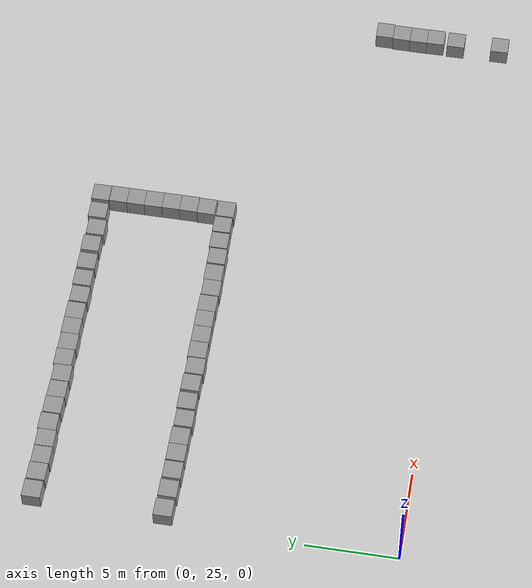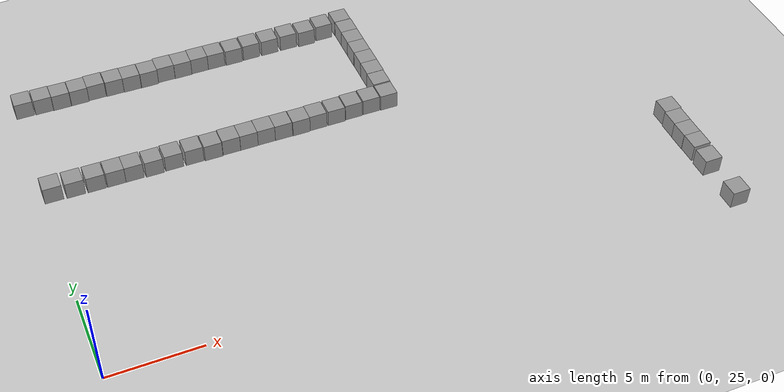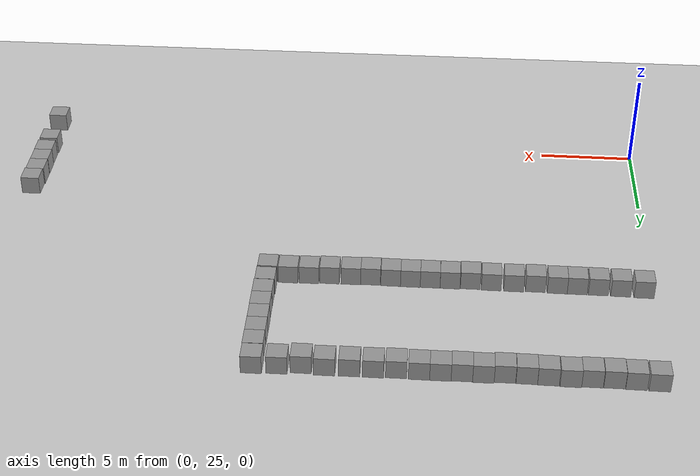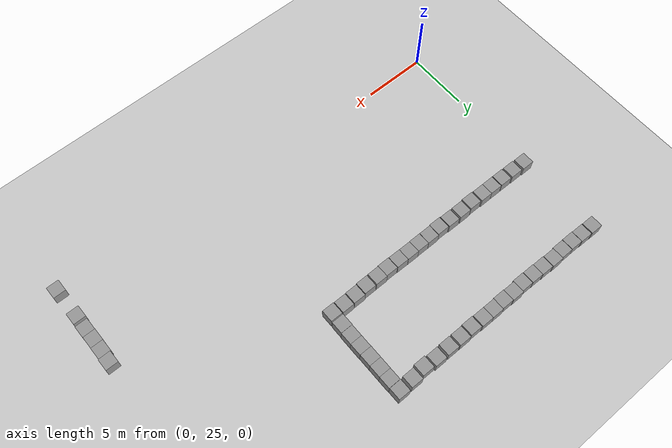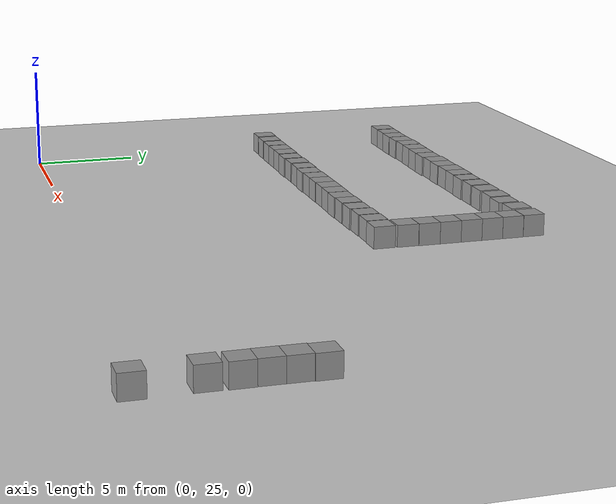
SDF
<sdf version="1.4">
 <world name="default">
  <model name="ground_plane">
   <static>1</static>
   <link name="link">
    <collision name="collision">
     <geometry><plane><normal>0 0 1</normal><size>100 100</size></plane></geometry>
     <surface><friction><ode><mu>100</mu><mu2>50</mu2></ode></friction></surface>
    </collision>
    <visual name="visual">
     <cast_shadows>0</cast_shadows>
     <geometry><plane><normal>0 0 1</normal><size>100 100</size></plane></geometry>
     <material>
      <script><uri>file://media/materials/scripts/gazebo.material</uri><name>Gazebo/Grey</name></script>
     </material>
    </visual>
    <velocity_decay><linear>0</linear><angular>0</angular></velocity_decay>
   </link>
  </model>
  <model name="unit_box_1">
   <pose>15.2627 37.4478 0.5 0 0 -0.00037</pose>
   <link name="link">
    <inertial>
     <mass>1</mass>
     <inertia><ixx>1</ixx><ixy>0</ixy><ixz>0</ixz><iyy>1</iyy><iyz>0</iyz><izz>1</izz></inertia>
    </inertial>
    <collision name="collision"><geometry><box><size>1 1 1</size></box></geometry></collision>
    <visual name="visual">
     <geometry><box><size>1 1 1</size></box></geometry>
     <material>
      <script><uri>file://media/materials/scripts/gazebo.material</uri><name>Gazebo/Grey</name></script>
     </material>
    </visual>
    <velocity_decay><linear>0</linear><angular>0</angular></velocity_decay>
   </link>
   <static>0</static>
  </model>
  <model name="unit_box_3">
   <pose>19.5401 41.5958 0.5 0 -0 0.000629</pose>
   <link name="link">
    <inertial>
     <mass>1</mass>
     <inertia><ixx>1</ixx><ixy>0</ixy><ixz>0</ixz><iyy>1</iyy><iyz>0</iyz><izz>1</izz></inertia>
    </inertial>
    <collision name="collision"><geometry><box><size>1 1 1</size></box></geometry></collision>
    <visual name="visual">
     <geometry><box><size>1 1 1</size></box></geometry>
     <material>
      <script><uri>file://media/materials/scripts/gazebo.material</uri><name>Gazebo/Grey</name></script>
     </material>
    </visual>
    <velocity_decay><linear>0</linear><angular>0</angular></velocity_decay>
   </link>
   <static>0</static>
  </model>
  <model name="unit_box_4">
   <pose>19.5489 40.5957 0.5 -3.14159 -0 -3.141</pose>
   <link name="link">
    <inertial>
     <mass>1</mass>
     <inertia><ixx>1</ixx><ixy>0</ixy><ixz>0</ixz><iyy>1</iyy><iyz>0</iyz><izz>1</izz></inertia>
    </inertial>
    <collision name="collision"><geometry><box><size>1 1 1</size></box></geometry></collision>
    <visual name="visual">
     <geometry><box><size>1 1 1</size></box></geometry>
     <material>
      <script><uri>file://media/materials/scripts/gazebo.material</uri><name>Gazebo/Grey</name></script>
     </material>
    </visual>
    <velocity_decay><linear>0</linear><angular>0</angular></velocity_decay>
   </link>
   <static>0</static>
  </model>
  <model name="unit_box_5">
   <pose>19.5412 42.5958 0.5 0 -0 0.000513</pose>
   <link name="link">
    <inertial>
     <mass>1</mass>
     <inertia><ixx>1</ixx><ixy>0</ixy><ixz>0</ixz><iyy>1</iyy><iyz>0</iyz><izz>1</izz></inertia>
    </inertial>
    <collision name="collision"><geometry><box><size>1 1 1</size></box></geometry></collision>
    <visual name="visual">
     <geometry><box><size>1 1 1</size></box></geometry>
     <material>
      <script><uri>file://media/materials/scripts/gazebo.material</uri><name>Gazebo/Grey</name></script>
     </material>
    </visual>
    <velocity_decay><linear>0</linear><angular>0</angular></velocity_decay>
   </link>
   <static>0</static>
  </model>
  <model name="unit_box_6">
   <pose>8.15665 37.4382 0.5 0 -0 0</pose>
   <link name="link">
    <inertial>
     <mass>1</mass>
     <inertia><ixx>1</ixx><ixy>0</ixy><ixz>0</ixz><iyy>1</iyy><iyz>0</iyz><izz>1</izz></inertia>
    </inertial>
    <collision name="collision"><geometry><box><size>1 1 1</size></box></geometry></collision>
    <visual name="visual">
     <geometry><box><size>1 1 1</size></box></geometry>
     <material>
      <script><uri>file://media/materials/scripts/gazebo.material</uri><name>Gazebo/Grey</name></script>
     </material>
    </visual>
    <velocity_decay><linear>0</linear><angular>0</angular></velocity_decay>
   </link>
   <static>0</static>
  </model>
  <model name="unit_box_7">
   <pose>17.3937 37.5116 0.5 0 -0 -0.000796</pose>
   <link name="link">
    <inertial>
     <mass>1</mass>
     <inertia><ixx>1</ixx><ixy>0</ixy><ixz>0</ixz><iyy>1</iyy><iyz>0</iyz><izz>1</izz></inertia>
    </inertial>
    <collision name="collision"><geometry><box><size>1 1 1</size></box></geometry></collision>
    <visual name="visual">
     <geometry><box><size>1 1 1</size></box></geometry>
     <material>
      <script><uri>file://media/materials/scripts/gazebo.material</uri><name>Gazebo/Grey</name></script>
     </material>
    </visual>
    <velocity_decay><linear>0</linear><angular>0</angular></velocity_decay>
   </link>
   <static>0</static>
  </model>
  <model name="unit_box_8">
   <pose>7.02469 37.4425 0.5 0 -0 4.7e-05</pose>
   <link name="link">
    <inertial>
     <mass>1</mass>
     <inertia><ixx>1</ixx><ixy>0</ixy><ixz>0</ixz><iyy>1</iyy><iyz>0</iyz><izz>1</izz></inertia>
    </inertial>
    <collision name="collision"><geometry><box><size>1 1 1</size></box></geometry></collision>
    <visual name="visual">
     <geometry><box><size>1 1 1</size></box></geometry>
     <material>
      <script><uri>file://media/materials/scripts/gazebo.material</uri><name>Gazebo/Grey</name></script>
     </material>
    </visual>
    <velocity_decay><linear>0</linear><angular>0</angular></velocity_decay>
   </link>
   <static>0</static>
  </model>
  <model name="unit_box_9">
   <pose>16.3457 37.4558 0.5 0 0 -0.000796</pose>
   <link name="link">
    <inertial>
     <mass>1</mass>
     <inertia><ixx>1</ixx><ixy>0</ixy><ixz>0</ixz><iyy>1</iyy><iyz>0</iyz><izz>1</izz></inertia>
    </inertial>
    <collision name="collision"><geometry><box><size>1 1 1</size></box></geometry></collision>
    <visual name="visual">
     <geometry><box><size>1 1 1</size></box></geometry>
     <material>
      <script><uri>file://media/materials/scripts/gazebo.material</uri><name>Gazebo/Grey</name></script>
     </material>
    </visual>
    <velocity_decay><linear>0</linear><angular>0</angular></velocity_decay>
   </link>
   <static>0</static>
  </model>
  <model name="unit_box_10">
   <pose>5.93209 37.3997 0.5 0 0 -0.000146</pose>
   <link name="link">
    <inertial>
     <mass>1</mass>
     <inertia><ixx>1</ixx><ixy>0</ixy><ixz>0</ixz><iyy>1</iyy><iyz>0</iyz><izz>1</izz></inertia>
    </inertial>
    <collision name="collision"><geometry><box><size>1 1 1</size></box></geometry></collision>
    <visual name="visual">
     <geometry><box><size>1 1 1</size></box></geometry>
     <material>
      <script><uri>file://media/materials/scripts/gazebo.material</uri><name>Gazebo/Grey</name></script>
     </material>
    </visual>
    <velocity_decay><linear>0</linear><angular>0</angular></velocity_decay>
   </link>
   <static>0</static>
  </model>
  <model name="unit_box_11">
   <pose>2.78254 37.4481 0.5 -0 -0 -0.000206</pose>
   <link name="link">
    <inertial>
     <mass>1</mass>
     <inertia><ixx>1</ixx><ixy>0</ixy><ixz>0</ixz><iyy>1</iyy><iyz>0</iyz><izz>1</izz></inertia>
    </inertial>
    <collision name="collision"><geometry><box><size>1 1 1</size></box></geometry></collision>
    <visual name="visual">
     <geometry><box><size>1 1 1</size></box></geometry>
     <material>
      <script><uri>file://media/materials/scripts/gazebo.material</uri><name>Gazebo/Grey</name></script>
     </material>
    </visual>
    <velocity_decay><linear>0</linear><angular>0</angular></velocity_decay>
   </link>
   <static>0</static>
  </model>
  <model name="unit_box_12">
   <pose>1.66601 37.4668 0.5 0 0 -0.000206</pose>
   <link name="link">
    <inertial>
     <mass>1</mass>
     <inertia><ixx>1</ixx><ixy>0</ixy><ixz>0</ixz><iyy>1</iyy><iyz>0</iyz><izz>1</izz></inertia>
    </inertial>
    <collision name="collision"><geometry><box><size>1 1 1</size></box></geometry></collision>
    <visual name="visual">
     <geometry><box><size>1 1 1</size></box></geometry>
     <material>
      <script><uri>file://media/materials/scripts/gazebo.material</uri><name>Gazebo/Grey</name></script>
     </material>
    </visual>
    <velocity_decay><linear>0</linear><angular>0</angular></velocity_decay>
   </link>
   <static>0</static>
  </model>
  <model name="unit_box_13">
   <pose>4.83791 37.4433 0.5 0 0 -0.000272</pose>
   <link name="link">
    <inertial>
     <mass>1</mass>
     <inertia><ixx>1</ixx><ixy>0</ixy><ixz>0</ixz><iyy>1</iyy><iyz>0</iyz><izz>1</izz></inertia>
    </inertial>
    <collision name="collision"><geometry><box><size>1 1 1</size></box></geometry></collision>
    <visual name="visual">
     <geometry><box><size>1 1 1</size></box></geometry>
     <material>
      <script><uri>file://media/materials/scripts/gazebo.material</uri><name>Gazebo/Grey</name></script>
     </material>
    </visual>
    <velocity_decay><linear>0</linear><angular>0</angular></velocity_decay>
   </link>
   <static>0</static>
  </model>
  <model name="unit_box_14">
   <pose>3.83791 37.445 0.5 0 -0 -0.000273</pose>
   <link name="link">
    <inertial>
     <mass>1</mass>
     <inertia><ixx>1</ixx><ixy>0</ixy><ixz>0</ixz><iyy>1</iyy><iyz>0</iyz><izz>1</izz></inertia>
    </inertial>
    <collision name="collision"><geometry><box><size>1 1 1</size></box></geometry></collision>
    <visual name="visual">
     <geometry><box><size>1 1 1</size></box></geometry>
     <material>
      <script><uri>file://media/materials/scripts/gazebo.material</uri><name>Gazebo/Grey</name></script>
     </material>
    </visual>
    <velocity_decay><linear>0</linear><angular>0</angular></velocity_decay>
   </link>
   <static>0</static>
  </model>
  <model name="unit_box_15">
   <pose>19.546 39.5957 0.5 0 -0 0.000517</pose>
   <link name="link">
    <inertial>
     <mass>1</mass>
     <inertia><ixx>1</ixx><ixy>0</ixy><ixz>0</ixz><iyy>1</iyy><iyz>0</iyz><izz>1</izz></inertia>
    </inertial>
    <collision name="collision"><geometry><box><size>1 1 1</size></box></geometry></collision>
    <visual name="visual">
     <geometry><box><size>1 1 1</size></box></geometry>
     <material>
      <script><uri>file://media/materials/scripts/gazebo.material</uri><name>Gazebo/Grey</name></script>
     </material>
    </visual>
    <velocity_decay><linear>0</linear><angular>0</angular></velocity_decay>
   </link>
   <static>0</static>
  </model>
  <model name="unit_box_16">
   <pose>19.5222 38.589 0.5 0 0 -0.000568</pose>
   <link name="link">
    <inertial>
     <mass>1</mass>
     <inertia><ixx>1</ixx><ixy>0</ixy><ixz>0</ixz><iyy>1</iyy><iyz>0</iyz><izz>1</izz></inertia>
    </inertial>
    <collision name="collision"><geometry><box><size>1 1 1</size></box></geometry></collision>
    <visual name="visual">
     <geometry><box><size>1 1 1</size></box></geometry>
     <material>
      <script><uri>file://media/materials/scripts/gazebo.material</uri><name>Gazebo/Grey</name></script>
     </material>
    </visual>
    <velocity_decay><linear>0</linear><angular>0</angular></velocity_decay>
   </link>
   <static>0</static>
  </model>
  <model name="unit_box_17">
   <pose>19.5451 43.5958 0.5 0 -0 0.000513</pose>
   <link name="link">
    <inertial>
     <mass>1</mass>
     <inertia><ixx>1</ixx><ixy>0</ixy><ixz>0</ixz><iyy>1</iyy><iyz>0</iyz><izz>1</izz></inertia>
    </inertial>
    <collision name="collision"><geometry><box><size>1 1 1</size></box></geometry></collision>
    <visual name="visual">
     <geometry><box><size>1 1 1</size></box></geometry>
     <material>
      <script><uri>file://media/materials/scripts/gazebo.material</uri><name>Gazebo/Grey</name></script>
     </material>
    </visual>
    <velocity_decay><linear>0</linear><angular>0</angular></velocity_decay>
   </link>
   <static>0</static>
  </model>
  <model name="unit_box_18">
   <pose>14.2627 37.4121 0.5 0 -0 -0.00037</pose>
   <link name="link">
    <inertial>
     <mass>1</mass>
     <inertia><ixx>1</ixx><ixy>0</ixy><ixz>0</ixz><iyy>1</iyy><iyz>0</iyz><izz>1</izz></inertia>
    </inertial>
    <collision name="collision"><geometry><box><size>1 1 1</size></box></geometry></collision>
    <visual name="visual">
     <geometry><box><size>1 1 1</size></box></geometry>
     <material>
      <script><uri>file://media/materials/scripts/gazebo.material</uri><name>Gazebo/Grey</name></script>
     </material>
    </visual>
    <velocity_decay><linear>0</linear><angular>0</angular></velocity_decay>
   </link>
   <static>0</static>
  </model>
  <model name="unit_box_19">
   <pose>13.2384 37.4353 0.5 0 0 -0.000791</pose>
   <link name="link">
    <inertial>
     <mass>1</mass>
     <inertia><ixx>1</ixx><ixy>0</ixy><ixz>0</ixz><iyy>1</iyy><iyz>0</iyz><izz>1</izz></inertia>
    </inertial>
    <collision name="collision"><geometry><box><size>1 1 1</size></box></geometry></collision>
    <visual name="visual">
     <geometry><box><size>1 1 1</size></box></geometry>
     <material>
      <script><uri>file://media/materials/scripts/gazebo.material</uri><name>Gazebo/Grey</name></script>
     </material>
    </visual>
    <velocity_decay><linear>0</linear><angular>0</angular></velocity_decay>
   </link>
   <static>0</static>
  </model>
  <model name="unit_box_20">
   <pose>12.2385 37.4461 0.5 0 0 -0.000786</pose>
   <link name="link">
    <inertial>
     <mass>1</mass>
     <inertia><ixx>1</ixx><ixy>0</ixy><ixz>0</ixz><iyy>1</iyy><iyz>0</iyz><izz>1</izz></inertia>
    </inertial>
    <collision name="collision"><geometry><box><size>1 1 1</size></box></geometry></collision>
    <visual name="visual">
     <geometry><box><size>1 1 1</size></box></geometry>
     <material>
      <script><uri>file://media/materials/scripts/gazebo.material</uri><name>Gazebo/Grey</name></script>
     </material>
    </visual>
    <velocity_decay><linear>0</linear><angular>0</angular></velocity_decay>
   </link>
   <static>0</static>
  </model>
  <model name="unit_box_21">
   <pose>11.2383 37.4328 0.5 0 0 -0.000588</pose>
   <link name="link">
    <inertial>
     <mass>1</mass>
     <inertia><ixx>1</ixx><ixy>0</ixy><ixz>0</ixz><iyy>1</iyy><iyz>0</iyz><izz>1</izz></inertia>
    </inertial>
    <collision name="collision"><geometry><box><size>1 1 1</size></box></geometry></collision>
    <visual name="visual">
     <geometry><box><size>1 1 1</size></box></geometry>
     <material>
      <script><uri>file://media/materials/scripts/gazebo.material</uri><name>Gazebo/Grey</name></script>
     </material>
    </visual>
    <velocity_decay><linear>0</linear><angular>0</angular></velocity_decay>
   </link>
   <static>0</static>
  </model>
  <model name="unit_box_22">
   <pose>10.2343 37.4366 0.5 0 0 -0.000547</pose>
   <link name="link">
    <inertial>
     <mass>1</mass>
     <inertia><ixx>1</ixx><ixy>0</ixy><ixz>0</ixz><iyy>1</iyy><iyz>0</iyz><izz>1</izz></inertia>
    </inertial>
    <collision name="collision"><geometry><box><size>1 1 1</size></box></geometry></collision>
    <visual name="visual">
     <geometry><box><size>1 1 1</size></box></geometry>
     <material>
      <script><uri>file://media/materials/scripts/gazebo.material</uri><name>Gazebo/Grey</name></script>
     </material>
    </visual>
    <velocity_decay><linear>0</linear><angular>0</angular></velocity_decay>
   </link>
   <static>0</static>
  </model>
  <model name="unit_box_23">
   <pose>18.4531 37.5349 0.5 0 0 -0.000568</pose>
   <link name="link">
    <inertial>
     <mass>1</mass>
     <inertia><ixx>1</ixx><ixy>0</ixy><ixz>0</ixz><iyy>1</iyy><iyz>0</iyz><izz>1</izz></inertia>
    </inertial>
    <collision name="collision"><geometry><box><size>1 1 1</size></box></geometry></collision>
    <visual name="visual">
     <geometry><box><size>1 1 1</size></box></geometry>
     <material>
      <script><uri>file://media/materials/scripts/gazebo.material</uri><name>Gazebo/Grey</name></script>
     </material>
    </visual>
    <velocity_decay><linear>0</linear><angular>0</angular></velocity_decay>
   </link>
   <static>0</static>
  </model>
  <model name="unit_box_25">
   <pose>9.20921 37.3925 0.5 0 -0 -0.000667</pose>
   <link name="link">
    <inertial>
     <mass>1</mass>
     <inertia><ixx>1</ixx><ixy>0</ixy><ixz>0</ixz><iyy>1</iyy><iyz>0</iyz><izz>1</izz></inertia>
    </inertial>
    <collision name="collision"><geometry><box><size>1 1 1</size></box></geometry></collision>
    <visual name="visual">
     <geometry><box><size>1 1 1</size></box></geometry>
     <material>
      <script><uri>file://media/materials/scripts/gazebo.material</uri><name>Gazebo/Grey</name></script>
     </material>
    </visual>
    <velocity_decay><linear>0</linear><angular>0</angular></velocity_decay>
   </link>
   <static>0</static>
  </model>
  <model name="unit_box_26">
   <pose>19.5048 37.5063 0.5 0 -0 -0.000667</pose>
   <link name="link">
    <inertial>
     <mass>1</mass>
     <inertia><ixx>1</ixx><ixy>0</ixy><ixz>0</ixz><iyy>1</iyy><iyz>0</iyz><izz>1</izz></inertia>
    </inertial>
    <collision name="collision"><geometry><box><size>1 1 1</size></box></geometry></collision>
    <visual name="visual">
     <geometry><box><size>1 1 1</size></box></geometry>
     <material>
      <script><uri>file://media/materials/scripts/gazebo.material</uri><name>Gazebo/Grey</name></script>
     </material>
    </visual>
    <velocity_decay><linear>0</linear><angular>0</angular></velocity_decay>
   </link>
   <static>0</static>
  </model>
  <model name="unit_box_74">
   <pose>0.509929 37.5064 0.5 0 -0 2e-06</pose>
   <link name="link">
    <inertial>
     <mass>1</mass>
     <inertia><ixx>1</ixx><ixy>0</ixy><ixz>0</ixz><iyy>1</iyy><iyz>0</iyz><izz>1</izz></inertia>
    </inertial>
    <collision name="collision"><geometry><box><size>1 1 1</size></box></geometry></collision>
    <visual name="visual">
     <geometry><box><size>1 1 1</size></box></geometry>
     <material>
      <script><uri>file://media/materials/scripts/gazebo.material</uri><name>Gazebo/Grey</name></script>
     </material>
    </visual>
    <velocity_decay><linear>0</linear><angular>0</angular></velocity_decay>
   </link>
   <static>0</static>
  </model>
  <model name="unit_box_75">
   <pose>0.50618 44.5057 0.5 0 -0 0</pose>
   <link name="link">
    <inertial>
     <mass>1</mass>
     <inertia><ixx>1</ixx><ixy>0</ixy><ixz>0</ixz><iyy>1</iyy><iyz>0</iyz><izz>1</izz></inertia>
    </inertial>
    <collision name="collision"><geometry><box><size>1 1 1</size></box></geometry></collision>
    <visual name="visual">
     <geometry><box><size>1 1 1</size></box></geometry>
     <material>
      <script><uri>file://media/materials/scripts/gazebo.material</uri><name>Gazebo/Grey</name></script>
     </material>
    </visual>
    <velocity_decay><linear>0</linear><angular>0</angular></velocity_decay>
   </link>
   <static>0</static>
  </model>
  <model name="unit_box_76">
   <pose>19.5263 44.6105 0.5 0 -0 0.000663</pose>
   <link name="link">
    <inertial>
     <mass>1</mass>
     <inertia><ixx>1</ixx><ixy>0</ixy><ixz>0</ixz><iyy>1</iyy><iyz>0</iyz><izz>1</izz></inertia>
    </inertial>
    <collision name="collision"><geometry><box><size>1 1 1</size></box></geometry></collision>
    <visual name="visual">
     <geometry><box><size>1 1 1</size></box></geometry>
     <material>
      <script><uri>file://media/materials/scripts/gazebo.material</uri><name>Gazebo/Grey</name></script>
     </material>
    </visual>
    <velocity_decay><linear>0</linear><angular>0</angular></velocity_decay>
   </link>
   <static>0</static>
  </model>
  <model name="unit_box_77">
   <pose>1.5695 44.4804 0.5 0 -0 0</pose>
   <link name="link">
    <inertial>
     <mass>1</mass>
     <inertia><ixx>1</ixx><ixy>0</ixy><ixz>0</ixz><iyy>1</iyy><iyz>0</iyz><izz>1</izz></inertia>
    </inertial>
    <collision name="collision"><geometry><box><size>1 1 1</size></box></geometry></collision>
    <visual name="visual">
     <geometry><box><size>1 1 1</size></box></geometry>
     <material>
      <script><uri>file://media/materials/scripts/gazebo.material</uri><name>Gazebo/Grey</name></script>
     </material>
    </visual>
    <velocity_decay><linear>0</linear><angular>0</angular></velocity_decay>
   </link>
   <static>0</static>
  </model>
  <model name="unit_box_78">
   <pose>2.57735 44.4486 0.5 0 -0 0</pose>
   <link name="link">
    <inertial>
     <mass>1</mass>
     <inertia><ixx>1</ixx><ixy>0</ixy><ixz>0</ixz><iyy>1</iyy><iyz>0</iyz><izz>1</izz></inertia>
    </inertial>
    <collision name="collision"><geometry><box><size>1 1 1</size></box></geometry></collision>
    <visual name="visual">
     <geometry><box><size>1 1 1</size></box></geometry>
     <material>
      <script><uri>file://media/materials/scripts/gazebo.material</uri><name>Gazebo/Grey</name></script>
     </material>
    </visual>
    <velocity_decay><linear>0</linear><angular>0</angular></velocity_decay>
   </link>
   <static>0</static>
  </model>
  <model name="unit_box_79">
   <pose>3.59631 44.4567 0.5 0 -0 5.7e-05</pose>
   <link name="link">
    <inertial>
     <mass>1</mass>
     <inertia><ixx>1</ixx><ixy>0</ixy><ixz>0</ixz><iyy>1</iyy><iyz>0</iyz><izz>1</izz></inertia>
    </inertial>
    <collision name="collision"><geometry><box><size>1 1 1</size></box></geometry></collision>
    <visual name="visual">
     <geometry><box><size>1 1 1</size></box></geometry>
     <material>
      <script><uri>file://media/materials/scripts/gazebo.material</uri><name>Gazebo/Grey</name></script>
     </material>
    </visual>
    <velocity_decay><linear>0</linear><angular>0</angular></velocity_decay>
   </link>
   <static>0</static>
  </model>
  <model name="unit_box_80">
   <pose>4.59632 44.5063 0.5 0 -0 5.7e-05</pose>
   <link name="link">
    <inertial>
     <mass>1</mass>
     <inertia><ixx>1</ixx><ixy>0</ixy><ixz>0</ixz><iyy>1</iyy><iyz>0</iyz><izz>1</izz></inertia>
    </inertial>
    <collision name="collision"><geometry><box><size>1 1 1</size></box></geometry></collision>
    <visual name="visual">
     <geometry><box><size>1 1 1</size></box></geometry>
     <material>
      <script><uri>file://media/materials/scripts/gazebo.material</uri><name>Gazebo/Grey</name></script>
     </material>
    </visual>
    <velocity_decay><linear>0</linear><angular>0</angular></velocity_decay>
   </link>
   <static>0</static>
  </model>
  <model name="unit_box_81">
   <pose>5.62845 44.4709 0.5 0 0 -0.000141</pose>
   <link name="link">
    <inertial>
     <mass>1</mass>
     <inertia><ixx>1</ixx><ixy>0</ixy><ixz>0</ixz><iyy>1</iyy><iyz>0</iyz><izz>1</izz></inertia>
    </inertial>
    <collision name="collision"><geometry><box><size>1 1 1</size></box></geometry></collision>
    <visual name="visual">
     <geometry><box><size>1 1 1</size></box></geometry>
     <material>
      <script><uri>file://media/materials/scripts/gazebo.material</uri><name>Gazebo/Grey</name></script>
     </material>
    </visual>
    <velocity_decay><linear>0</linear><angular>0</angular></velocity_decay>
   </link>
   <static>0</static>
  </model>
  <model name="unit_box_82">
   <pose>6.62844 44.444 0.5 0 0 -0.000142</pose>
   <link name="link">
    <inertial>
     <mass>1</mass>
     <inertia><ixx>1</ixx><ixy>0</ixy><ixz>0</ixz><iyy>1</iyy><iyz>0</iyz><izz>1</izz></inertia>
    </inertial>
    <collision name="collision"><geometry><box><size>1 1 1</size></box></geometry></collision>
    <visual name="visual">
     <geometry><box><size>1 1 1</size></box></geometry>
     <material>
      <script><uri>file://media/materials/scripts/gazebo.material</uri><name>Gazebo/Grey</name></script>
     </material>
    </visual>
    <velocity_decay><linear>0</linear><angular>0</angular></velocity_decay>
   </link>
   <static>0</static>
  </model>
  <model name="unit_box_83">
   <pose>7.64311 44.4267 0.5 0 -0 1.6e-05</pose>
   <link name="link">
    <inertial>
     <mass>1</mass>
     <inertia><ixx>1</ixx><ixy>0</ixy><ixz>0</ixz><iyy>1</iyy><iyz>0</iyz><izz>1</izz></inertia>
    </inertial>
    <collision name="collision"><geometry><box><size>1 1 1</size></box></geometry></collision>
    <visual name="visual">
     <geometry><box><size>1 1 1</size></box></geometry>
     <material>
      <script><uri>file://media/materials/scripts/gazebo.material</uri><name>Gazebo/Grey</name></script>
     </material>
    </visual>
    <velocity_decay><linear>0</linear><angular>0</angular></velocity_decay>
   </link>
   <static>0</static>
  </model>
  <model name="unit_box_84">
   <pose>8.64312 44.5012 0.5 0 -0 1.3e-05</pose>
   <link name="link">
    <inertial>
     <mass>1</mass>
     <inertia><ixx>1</ixx><ixy>0</ixy><ixz>0</ixz><iyy>1</iyy><iyz>0</iyz><izz>1</izz></inertia>
    </inertial>
    <collision name="collision"><geometry><box><size>1 1 1</size></box></geometry></collision>
    <visual name="visual">
     <geometry><box><size>1 1 1</size></box></geometry>
     <material>
      <script><uri>file://media/materials/scripts/gazebo.material</uri><name>Gazebo/Grey</name></script>
     </material>
    </visual>
    <velocity_decay><linear>0</linear><angular>0</angular></velocity_decay>
   </link>
   <static>0</static>
  </model>
  <model name="unit_box_85">
   <pose>9.64321 44.4723 0.5 0 -0 0.000161</pose>
   <link name="link">
    <inertial>
     <mass>1</mass>
     <inertia><ixx>1</ixx><ixy>0</ixy><ixz>0</ixz><iyy>1</iyy><iyz>0</iyz><izz>1</izz></inertia>
    </inertial>
    <collision name="collision"><geometry><box><size>1 1 1</size></box></geometry></collision>
    <visual name="visual">
     <geometry><box><size>1 1 1</size></box></geometry>
     <material>
      <script><uri>file://media/materials/scripts/gazebo.material</uri><name>Gazebo/Grey</name></script>
     </material>
    </visual>
    <velocity_decay><linear>0</linear><angular>0</angular></velocity_decay>
   </link>
   <static>0</static>
  </model>
  <model name="unit_box_86">
   <pose>10.6433 44.5052 0.5 0 -0 0.000264</pose>
   <link name="link">
    <inertial>
     <mass>1</mass>
     <inertia><ixx>1</ixx><ixy>0</ixy><ixz>0</ixz><iyy>1</iyy><iyz>0</iyz><izz>1</izz></inertia>
    </inertial>
    <collision name="collision"><geometry><box><size>1 1 1</size></box></geometry></collision>
    <visual name="visual">
     <geometry><box><size>1 1 1</size></box></geometry>
     <material>
      <script><uri>file://media/materials/scripts/gazebo.material</uri><name>Gazebo/Grey</name></script>
     </material>
    </visual>
    <velocity_decay><linear>0</linear><angular>0</angular></velocity_decay>
   </link>
   <static>0</static>
  </model>
  <model name="unit_box_87">
   <pose>11.6433 44.5015 0.5 0 -0 0.000281</pose>
   <link name="link">
    <inertial>
     <mass>1</mass>
     <inertia><ixx>1</ixx><ixy>0</ixy><ixz>0</ixz><iyy>1</iyy><iyz>0</iyz><izz>1</izz></inertia>
    </inertial>
    <collision name="collision"><geometry><box><size>1 1 1</size></box></geometry></collision>
    <visual name="visual">
     <geometry><box><size>1 1 1</size></box></geometry>
     <material>
      <script><uri>file://media/materials/scripts/gazebo.material</uri><name>Gazebo/Grey</name></script>
     </material>
    </visual>
    <velocity_decay><linear>0</linear><angular>0</angular></velocity_decay>
   </link>
   <static>0</static>
  </model>
  <model name="unit_box_88">
   <pose>12.7096 44.4689 0.5 0 -0 0.000281</pose>
   <link name="link">
    <inertial>
     <mass>1</mass>
     <inertia><ixx>1</ixx><ixy>0</ixy><ixz>0</ixz><iyy>1</iyy><iyz>0</iyz><izz>1</izz></inertia>
    </inertial>
    <collision name="collision"><geometry><box><size>1 1 1</size></box></geometry></collision>
    <visual name="visual">
     <geometry><box><size>1 1 1</size></box></geometry>
     <material>
      <script><uri>file://media/materials/scripts/gazebo.material</uri><name>Gazebo/Grey</name></script>
     </material>
    </visual>
    <velocity_decay><linear>0</linear><angular>0</angular></velocity_decay>
   </link>
   <static>0</static>
  </model>
  <model name="unit_box_89">
   <pose>13.7893 44.5063 0.5 0 -0 0.000281</pose>
   <link name="link">
    <inertial>
     <mass>1</mass>
     <inertia><ixx>1</ixx><ixy>0</ixy><ixz>0</ixz><iyy>1</iyy><iyz>0</iyz><izz>1</izz></inertia>
    </inertial>
    <collision name="collision"><geometry><box><size>1 1 1</size></box></geometry></collision>
    <visual name="visual">
     <geometry><box><size>1 1 1</size></box></geometry>
     <material>
      <script><uri>file://media/materials/scripts/gazebo.material</uri><name>Gazebo/Grey</name></script>
     </material>
    </visual>
    <velocity_decay><linear>0</linear><angular>0</angular></velocity_decay>
   </link>
   <static>0</static>
  </model>
  <model name="unit_box_90">
   <pose>14.9088 44.503 0.5 0 -0 0.000284</pose>
   <link name="link">
    <inertial>
     <mass>1</mass>
     <inertia><ixx>1</ixx><ixy>0</ixy><ixz>0</ixz><iyy>1</iyy><iyz>0</iyz><izz>1</izz></inertia>
    </inertial>
    <collision name="collision"><geometry><box><size>1 1 1</size></box></geometry></collision>
    <visual name="visual">
     <geometry><box><size>1 1 1</size></box></geometry>
     <material>
      <script><uri>file://media/materials/scripts/gazebo.material</uri><name>Gazebo/Grey</name></script>
     </material>
    </visual>
    <velocity_decay><linear>0</linear><angular>0</angular></velocity_decay>
   </link>
   <static>0</static>
  </model>
  <model name="unit_box_91">
   <pose>16.0814 44.5232 0.5 0 -0 0.000281</pose>
   <link name="link">
    <inertial>
     <mass>1</mass>
     <inertia><ixx>1</ixx><ixy>0</ixy><ixz>0</ixz><iyy>1</iyy><iyz>0</iyz><izz>1</izz></inertia>
    </inertial>
    <collision name="collision"><geometry><box><size>1 1 1</size></box></geometry></collision>
    <visual name="visual">
     <geometry><box><size>1 1 1</size></box></geometry>
     <material>
      <script><uri>file://media/materials/scripts/gazebo.material</uri><name>Gazebo/Grey</name></script>
     </material>
    </visual>
    <velocity_decay><linear>0</linear><angular>0</angular></velocity_decay>
   </link>
   <static>0</static>
  </model>
  <model name="unit_box_92">
   <pose>17.1882 44.4426 0.5 0 -0 0.000252</pose>
   <link name="link">
    <inertial>
     <mass>1</mass>
     <inertia><ixx>1</ixx><ixy>0</ixy><ixz>0</ixz><iyy>1</iyy><iyz>0</iyz><izz>1</izz></inertia>
    </inertial>
    <collision name="collision"><geometry><box><size>1 1 1</size></box></geometry></collision>
    <visual name="visual">
     <geometry><box><size>1 1 1</size></box></geometry>
     <material>
      <script><uri>file://media/materials/scripts/gazebo.material</uri><name>Gazebo/Grey</name></script>
     </material>
    </visual>
    <velocity_decay><linear>0</linear><angular>0</angular></velocity_decay>
   </link>
   <static>0</static>
  </model>
  <model name="unit_box_93">
   <pose>18.3196 44.5608 0.5 0 -0 0.000251</pose>
   <link name="link">
    <inertial>
     <mass>1</mass>
     <inertia><ixx>1</ixx><ixy>0</ixy><ixz>0</ixz><iyy>1</iyy><iyz>0</iyz><izz>1</izz></inertia>
    </inertial>
    <collision name="collision"><geometry><box><size>1 1 1</size></box></geometry></collision>
    <visual name="visual">
     <geometry><box><size>1 1 1</size></box></geometry>
     <material>
      <script><uri>file://media/materials/scripts/gazebo.material</uri><name>Gazebo/Grey</name></script>
     </material>
    </visual>
    <velocity_decay><linear>0</linear><angular>0</angular></velocity_decay>
   </link>
   <static>0</static>
  </model>
  <model name="unit_box_125">
   <pose>33.4789 30.4264 0.5 -0 -0 -4e-06</pose>
   <link name="link">
    <inertial>
     <mass>1</mass>
     <inertia><ixx>1</ixx><ixy>0</ixy><ixz>0</ixz><iyy>1</iyy><iyz>0</iyz><izz>1</izz></inertia>
    </inertial>
    <collision name="collision"><geometry><box><size>1 1 1</size></box></geometry></collision>
    <visual name="visual">
     <geometry><box><size>1 1 1</size></box></geometry>
     <material>
      <script><uri>file://media/materials/scripts/gazebo.material</uri><name>Gazebo/Grey</name></script>
     </material>
    </visual>
    <velocity_decay><linear>0</linear><angular>0</angular></velocity_decay>
   </link>
   <static>0</static>
  </model>
  <model name="unit_box_126">
   <pose>33.4317 29.4264 0.5 0 0 -3e-06</pose>
   <link name="link">
    <inertial>
     <mass>1</mass>
     <inertia><ixx>1</ixx><ixy>0</ixy><ixz>0</ixz><iyy>1</iyy><iyz>0</iyz><izz>1</izz></inertia>
    </inertial>
    <collision name="collision"><geometry><box><size>1 1 1</size></box></geometry></collision>
    <visual name="visual">
     <geometry><box><size>1 1 1</size></box></geometry>
     <material>
      <script><uri>file://media/materials/scripts/gazebo.material</uri><name>Gazebo/Grey</name></script>
     </material>
    </visual>
    <velocity_decay><linear>0</linear><angular>0</angular></velocity_decay>
   </link>
   <static>0</static>
  </model>
  <model name="unit_box_127">
   <pose>33.4227 28.4264 0.5 0 -0 1e-06</pose>
   <link name="link">
    <inertial>
     <mass>1</mass>
     <inertia><ixx>1</ixx><ixy>0</ixy><ixz>0</ixz><iyy>1</iyy><iyz>0</iyz><izz>1</izz></inertia>
    </inertial>
    <collision name="collision"><geometry><box><size>1 1 1</size></box></geometry></collision>
    <visual name="visual">
     <geometry><box><size>1 1 1</size></box></geometry>
     <material>
      <script><uri>file://media/materials/scripts/gazebo.material</uri><name>Gazebo/Grey</name></script>
     </material>
    </visual>
    <velocity_decay><linear>0</linear><angular>0</angular></velocity_decay>
   </link>
   <static>0</static>
  </model>
  <model name="unit_box_128">
   <pose>33.4369 27.4264 0.5 -0 -0 -6e-06</pose>
   <link name="link">
    <inertial>
     <mass>1</mass>
     <inertia><ixx>1</ixx><ixy>0</ixy><ixz>0</ixz><iyy>1</iyy><iyz>0</iyz><izz>1</izz></inertia>
    </inertial>
    <collision name="collision"><geometry><box><size>1 1 1</size></box></geometry></collision>
    <visual name="visual">
     <geometry><box><size>1 1 1</size></box></geometry>
     <material>
      <script><uri>file://media/materials/scripts/gazebo.material</uri><name>Gazebo/Grey</name></script>
     </material>
    </visual>
    <velocity_decay><linear>0</linear><angular>0</angular></velocity_decay>
   </link>
   <static>0</static>
  </model>
  <model name="unit_box_129">
   <pose>33.4089 26.2346 0.5 0 -0 0</pose>
   <link name="link">
    <inertial>
     <mass>1</mass>
     <inertia><ixx>1</ixx><ixy>0</ixy><ixz>0</ixz><iyy>1</iyy><iyz>0</iyz><izz>1</izz></inertia>
    </inertial>
    <collision name="collision"><geometry><box><size>1 1 1</size></box></geometry></collision>
    <visual name="visual">
     <geometry><box><size>1 1 1</size></box></geometry>
     <material>
      <script><uri>file://media/materials/scripts/gazebo.material</uri><name>Gazebo/Grey</name></script>
     </material>
    </visual>
    <velocity_decay><linear>0</linear><angular>0</angular></velocity_decay>
   </link>
   <static>0</static>
  </model>
  <model name="unit_box_131">
   <pose>33.4517 23.679 0.5 0 -0 0</pose>
   <link name="link">
    <inertial>
     <mass>1</mass>
     <inertia><ixx>1</ixx><ixy>0</ixy><ixz>0</ixz><iyy>1</iyy><iyz>0</iyz><izz>1</izz></inertia>
    </inertial>
    <collision name="collision"><geometry><box><size>1 1 1</size></box></geometry></collision>
    <visual name="visual">
     <geometry><box><size>1 1 1</size></box></geometry>
     <material>
      <script><uri>file://media/materials/scripts/gazebo.material</uri><name>Gazebo/Grey</name></script>
     </material>
    </visual>
    <velocity_decay><linear>0</linear><angular>0</angular></velocity_decay>
   </link>
   <static>0</static>
  </model>
 </world>
</sdf>
